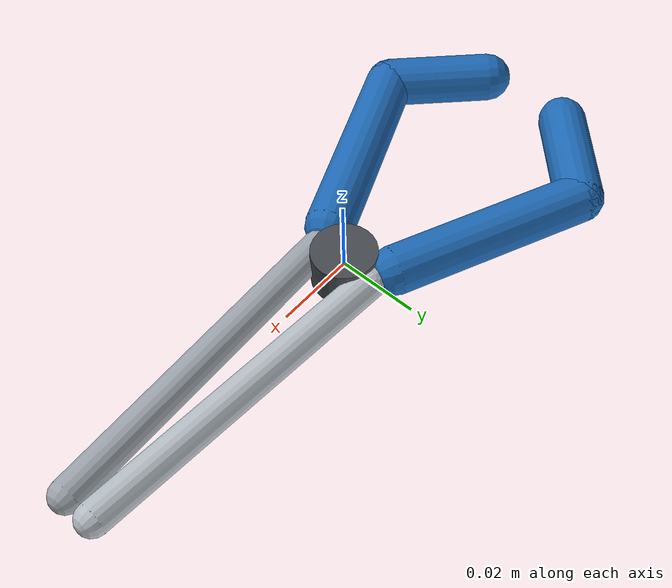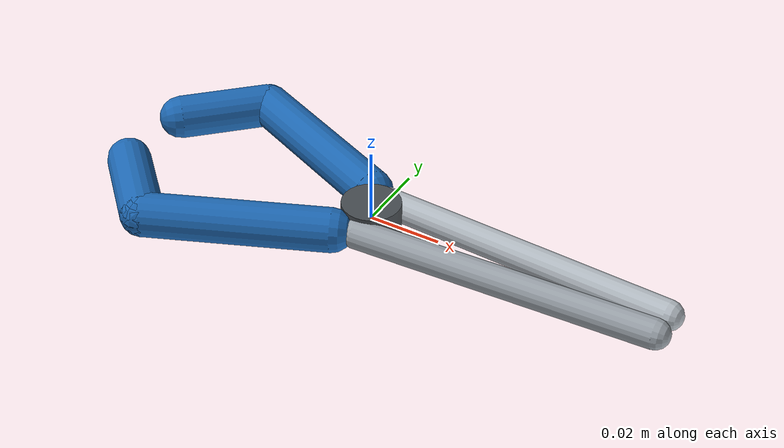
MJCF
<mujoco model="medical_scissors">
  <worldbody>
    <body>
      <body name="object">
        <geom name="blade_left" type="capsule" fromto="0 0.008 0 0.082 0.004 0"
              size="0.004" rgba="0.72 0.75 0.78 1" density="500"
              friction="1 0.005 0.0001"
              contype="0" conaffinity="0" group="1"/>
        <geom name="blade_right" type="capsule" fromto="0 -0.008 0 0.082 -0.004 0"
              size="0.004" rgba="0.62 0.65 0.68 1" density="500"
              friction="1 0.005 0.0001"
              contype="0" conaffinity="0" group="1"/>
        <geom name="pivot" type="cylinder" pos="0 0 0"
              size="0.008 0.005" rgba="0.28 0.30 0.32 1"
              contype="0" conaffinity="0" group="1"/>
        <geom name="handle_left_outer" type="capsule"
              fromto="-0.006 0.010 0 -0.052 0.030 0"
              size="0.006" rgba="0.12 0.42 0.72 1"
              contype="0" conaffinity="0" group="1"/>
        <geom name="handle_left_end" type="capsule"
              fromto="-0.052 0.030 0 -0.070 0.012 0"
              size="0.006" rgba="0.12 0.42 0.72 1"
              contype="0" conaffinity="0" group="1"/>
        <geom name="handle_right_outer" type="capsule"
              fromto="-0.006 -0.010 0 -0.052 -0.030 0"
              size="0.006" rgba="0.12 0.42 0.72 1"
              contype="0" conaffinity="0" group="1"/>
        <geom name="handle_right_end" type="capsule"
              fromto="-0.052 -0.030 0 -0.070 -0.012 0"
              size="0.006" rgba="0.12 0.42 0.72 1"
              contype="0" conaffinity="0" group="1"/>
        <geom name="scissors_collision" type="capsule"
              fromto="-0.070 0 0.012 0.082 0 0.012" size="0.018"
              rgba="0 0 0 0" density="500"
              friction="1 0.005 0.0001" group="0"/>
      </body>
      <site name="bottom_site" pos="0 0 -0.006" size="0.003" rgba="0 0 0 0"/>
      <site name="top_site" pos="0 0 0.030" size="0.003" rgba="0 0 0 0"/>
      <site name="horizontal_radius_site" pos="0.085 0 0"
            size="0.003" rgba="0 0 0 0"/>
    </body>
  </worldbody>
</mujoco>
